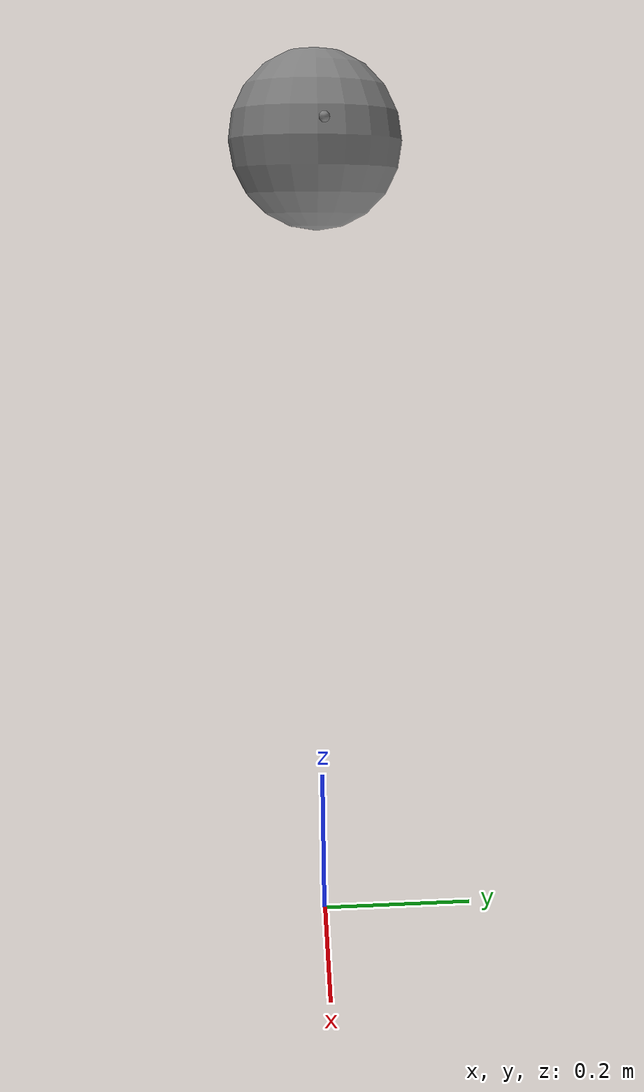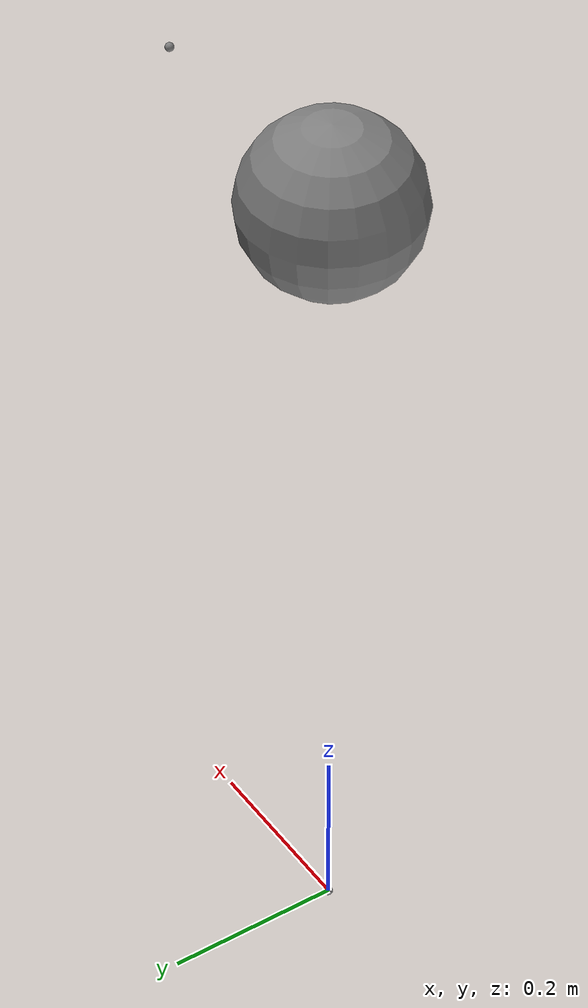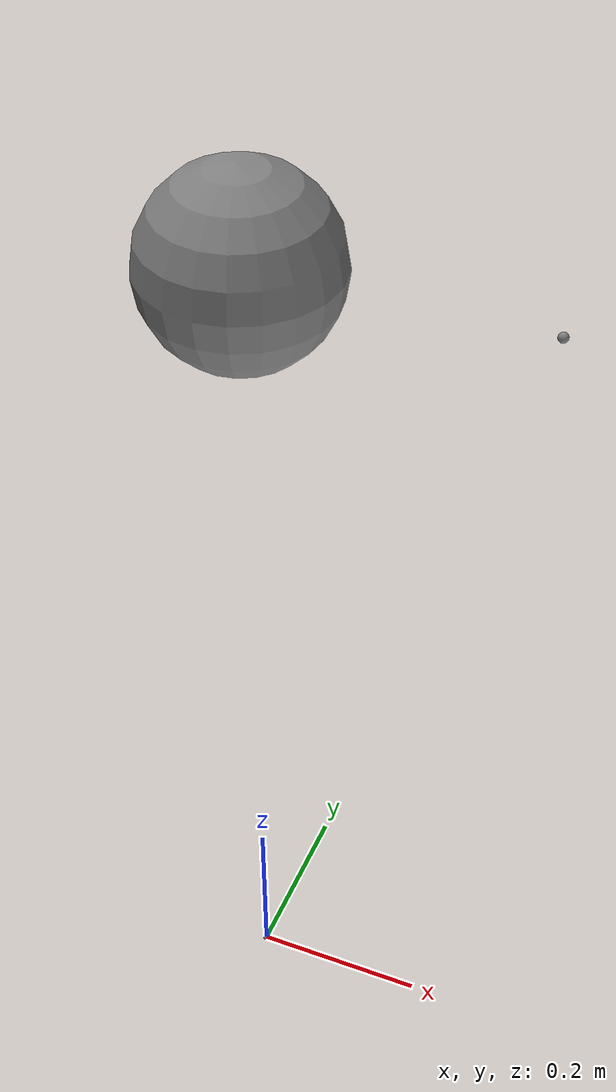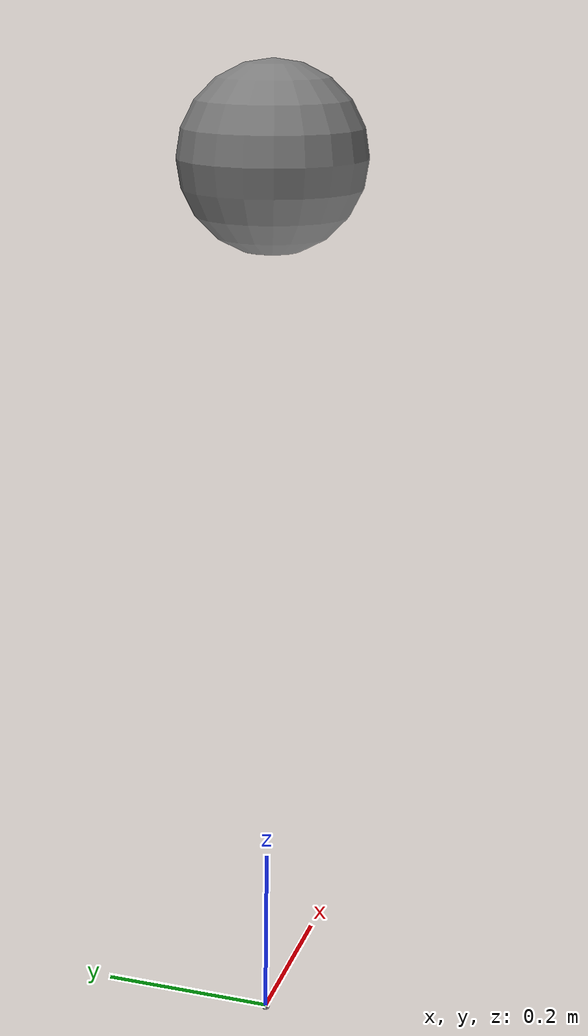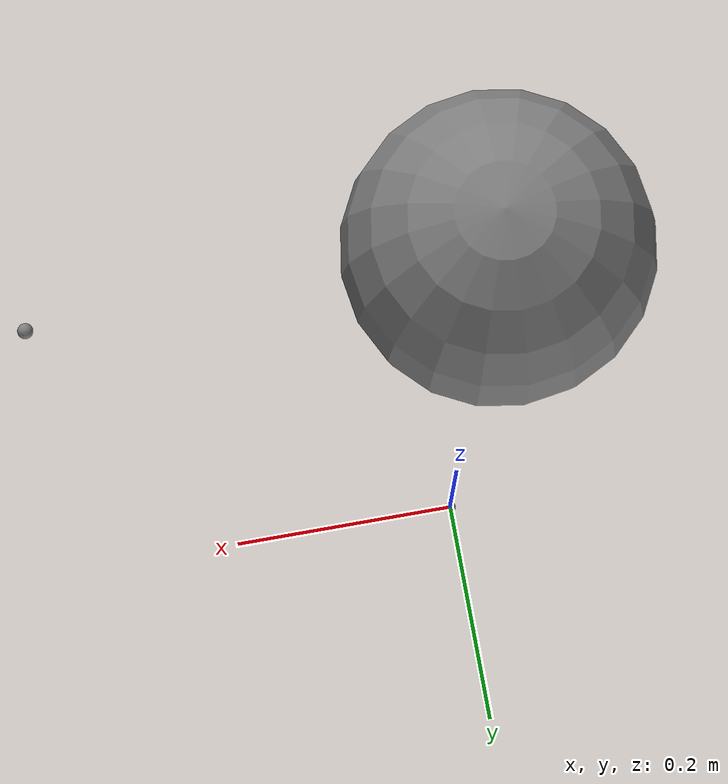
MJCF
<mujoco model="vel_sensor_site">
            <worldbody>
                <body name="b1" pos="0 0 1">
                    <joint name="j1" type="hinge" axis="0 1 0"/>
                    <geom type="sphere" size="0.1" mass="1.0"/>
                    <site name="ee" pos="0.3 0 0"/>
                </body>
                <site name="target" pos="0 0 0"/>
            </worldbody>
            <actuator>
                <general name="a1" site="ee" refsite="target" gear="0 0 1 0 0 0"/>
            </actuator>
            <sensor>
                <actuatorvel actuator="a1"/>
            </sensor>
        </mujoco>
